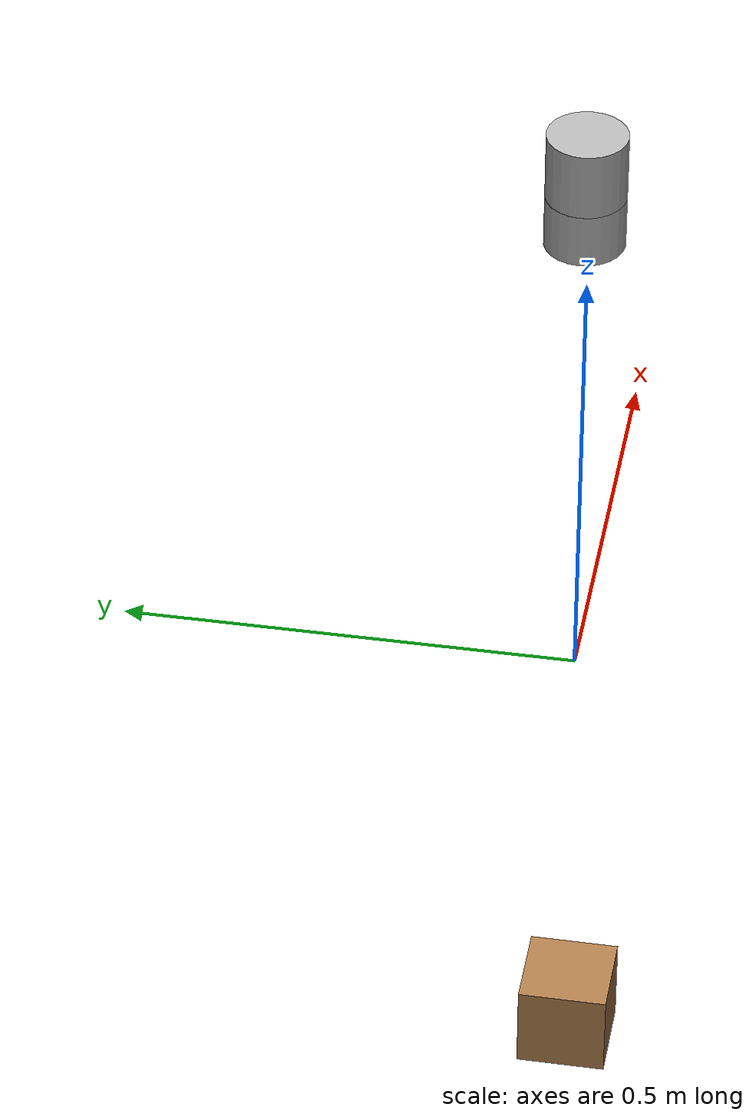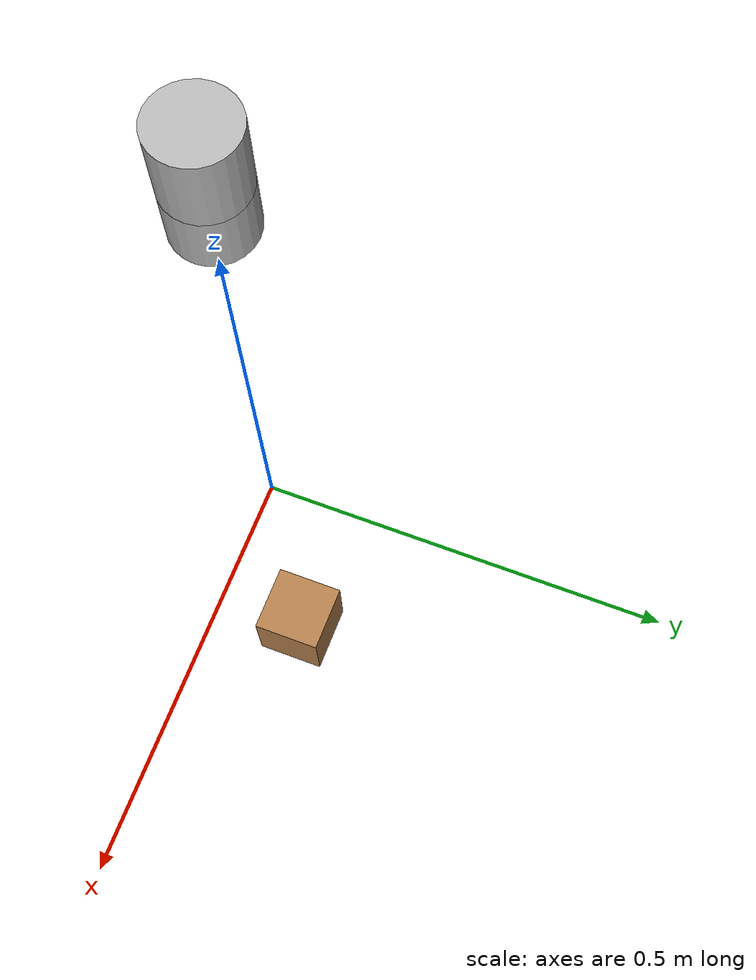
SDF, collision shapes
<?xml version='1.0'?>
<sdf version='1.7'>
  <model name='vehicle'>
    <model name='velodyne_hdl-32'>
      <link name='base'>
        <pose>0 0 0.029335 0 -0 0</pose>
        <inertial>
          <mass>1.2</mass>
          <inertia>
            <ixx>0.00108747</ixx>
            <iyy>0.00108747</iyy>
            <izz>0.00109244</izz>
            <ixy>0</ixy>
            <ixz>0</ixz>
            <iyz>0</iyz>
          </inertia>
          <pose>0 0 0 0 -0 0</pose>
        </inertial>
        <self_collide>0</self_collide>
        <enable_wind>0</enable_wind>
        <kinematic>0</kinematic>
        <visual name='base_visual'>
          <pose>0 0 -0.029335 0 -0 0</pose>
          <geometry>
            <mesh>
              <uri>model://velodyne_hdl32/meshes/velodyne_base.dae</uri>
            </mesh>
          </geometry>
          <material>
            <shader type='pixel'/>
          </material>
          <transparency>0</transparency>
          <cast_shadows>1</cast_shadows>
        </visual>
        <collision name='base_collision'>
          <laser_retro>0</laser_retro>
          <max_contacts>10</max_contacts>
          <pose>0 0 0 0 -0 0</pose>
          <geometry>
            <cylinder>
              <radius>0.04267</radius>
              <length>0.05867</length>
            </cylinder>
          </geometry>
          <surface>
            <friction>
              <ode>
                <mu>1</mu>
                <mu2>1</mu2>
                <fdir1>0 0 0</fdir1>
                <slip1>0</slip1>
                <slip2>0</slip2>
              </ode>
              <torsional>
                <coefficient>1</coefficient>
                <patch_radius>0</patch_radius>
                <surface_radius>0</surface_radius>
                <use_patch_radius>1</use_patch_radius>
                <ode>
                  <slip>0</slip>
                </ode>
              </torsional>
            </friction>
            <bounce>
              <restitution_coefficient>0</restitution_coefficient>
              <threshold>1e+06</threshold>
            </bounce>
            <contact>
              <collide_without_contact>0</collide_without_contact>
              <collide_without_contact_bitmask>1</collide_without_contact_bitmask>
              <collide_bitmask>1</collide_bitmask>
              <ode>
                <soft_cfm>0</soft_cfm>
                <soft_erp>0.2</soft_erp>
                <kp>1e+13</kp>
                <kd>1</kd>
                <max_vel>0.01</max_vel>
                <min_depth>0</min_depth>
              </ode>
              <bullet>
                <split_impulse>1</split_impulse>
                <split_impulse_penetration_threshold>-0.01</split_impulse_penetration_threshold>
                <soft_cfm>0</soft_cfm>
                <soft_erp>0.2</soft_erp>
                <kp>1e+13</kp>
                <kd>1</kd>
              </bullet>
            </contact>
          </surface>
        </collision>
      </link>
      <link name='top'>
        <pose>0 0 0.095455 0 -0 0</pose>
        <inertial>
          <mass>0.1</mass>
          <inertia>
            <ixx>9.062e-05</ixx>
            <iyy>9.062e-05</iyy>
            <izz>9.104e-05</izz>
            <ixy>0</ixy>
            <ixz>0</ixz>
            <iyz>0</iyz>
          </inertia>
          <pose>0 0 0 0 -0 0</pose>
        </inertial>
        <sensor name='sensor' type='ray'>
          <pose>0 0 -0.004645 1.5707 -0 0</pose>
          <visualize>1</visualize>
          <update_rate>30</update_rate>
          <ray>
            <scan>
              <horizontal>
                <samples>32</samples>
                <resolution>1</resolution>
                <min_angle>-0.535292</min_angle>
                <max_angle>0.186227</max_angle>
              </horizontal>
              <vertical>
                <samples>1</samples>
                <min_angle>0</min_angle>
                <max_angle>0</max_angle>
              </vertical>
            </scan>
            <range>
              <min>0.05</min>
              <max>70</max>
              <resolution>0.02</resolution>
            </range>
          </ray>
        </sensor>
        <self_collide>0</self_collide>
        <enable_wind>0</enable_wind>
        <kinematic>0</kinematic>
        <gravity>0</gravity>
        <visual name='top_visual'>
          <pose>0 0 -0.037679 0 -0 1.5707</pose>
          <geometry>
            <mesh>
              <uri>model://velodyne_hdl32/meshes/velodyne_top.dae</uri>
            </mesh>
          </geometry>
          <material>
            <shader type='pixel'>
              <normal_map>__default__</normal_map>
            </shader>
          </material>
          <pose>0 0 0 0 -0 0</pose>
          <transparency>0</transparency>
          <cast_shadows>1</cast_shadows>
        </visual>
        <collision name='top_collision'>
          <laser_retro>0</laser_retro>
          <max_contacts>10</max_contacts>
          <pose>0 0 0 0 -0 0</pose>
          <geometry>
            <cylinder>
              <radius>0.04267</radius>
              <length>0.07357</length>
            </cylinder>
          </geometry>
          <surface>
            <friction>
              <ode>
                <mu>1</mu>
                <mu2>1</mu2>
                <fdir1>0 0 0</fdir1>
                <slip1>0</slip1>
                <slip2>0</slip2>
              </ode>
              <torsional>
                <coefficient>1</coefficient>
                <patch_radius>0</patch_radius>
                <surface_radius>0</surface_radius>
                <use_patch_radius>1</use_patch_radius>
                <ode>
                  <slip>0</slip>
                </ode>
              </torsional>
            </friction>
            <bounce>
              <restitution_coefficient>0</restitution_coefficient>
              <threshold>1e+06</threshold>
            </bounce>
            <contact>
              <collide_without_contact>0</collide_without_contact>
              <collide_without_contact_bitmask>1</collide_without_contact_bitmask>
              <collide_bitmask>1</collide_bitmask>
              <ode>
                <soft_cfm>0</soft_cfm>
                <soft_erp>0.2</soft_erp>
                <kp>1e+13</kp>
                <kd>1</kd>
                <max_vel>0.01</max_vel>
                <min_depth>0</min_depth>
              </ode>
              <bullet>
                <split_impulse>1</split_impulse>
                <split_impulse_penetration_threshold>-0.01</split_impulse_penetration_threshold>
                <soft_cfm>0</soft_cfm>
                <soft_erp>0.2</soft_erp>
                <kp>1e+13</kp>
                <kd>1</kd>
              </bullet>
            </contact>
          </surface>
        </collision>
      </link>
      <joint name='joint' type='revolute'>
        <parent>base</parent>
        <child>top</child>
        <pose>0 0 -0.036785 0 -0 0</pose>
        <axis>
          <xyz>0 0 1</xyz>
          <limit>
            <lower>-1e+16</lower>
            <upper>1e+16</upper>
            <effort>-1</effort>
            <velocity>-1</velocity>
          </limit>
          <dynamics>
            <spring_reference>0</spring_reference>
            <spring_stiffness>0</spring_stiffness>
            <damping>0</damping>
            <friction>0</friction>
          </dynamics>
        </axis>
        <physics>
          <ode>
            <limit>
              <cfm>0</cfm>
              <erp>0.2</erp>
            </limit>
            <suspension>
              <cfm>0</cfm>
              <erp>0.2</erp>
            </suspension>
          </ode>
        </physics>
      </joint>
      <static>0</static>
      <allow_auto_disable>1</allow_auto_disable>
      <plugin name='velodyne_plugin' filename='libvelodyne_plugin.so'>
        <velocity>5</velocity>
      </plugin>
      <pose>-0.000695 0.00376 0.554517 0 -0 0</pose>
    </model>
    <model name='wood_cube_10cm'>
      <link name='link'>
        <pose>0 0 0.05 0 -0 0</pose>
        <inertial>
          <mass>0.5167</mass>
          <inertia>
            <ixx>0.000861167</ixx>
            <ixy>0</ixy>
            <ixz>0</ixz>
            <iyy>0.000861167</iyy>
            <iyz>0</iyz>
            <izz>0.000861167</izz>
          </inertia>
        </inertial>
        <collision name='collision'>
          <geometry>
            <box>
              <size>0.1 0.1 0.1</size>
            </box>
          </geometry>
          <surface>
            <contact>
              <poissons_ratio>0.347</poissons_ratio>
              <elastic_modulus>8.8e+09</elastic_modulus>
              <ode>
                <kp>100000</kp>
                <kd>100</kd>
                <max_vel>100</max_vel>
                <min_depth>0.001</min_depth>
              </ode>
            </contact>
            <friction>
              <torsional>
                <coefficient>1</coefficient>
                <use_patch_radius>0</use_patch_radius>
                <surface_radius>0.01</surface_radius>
              </torsional>
            </friction>
          </surface>
        </collision>
        <visual name='visual'>
          <geometry>
            <box>
              <size>0.1 0.1 0.1</size>
            </box>
          </geometry>
          <material>
            <script>
              <uri>file://media/materials/scripts/gazebo.material</uri>
              <name>Gazebo/Wood</name>
            </script>
          </material>
        </visual>
      </link>
      <pose>0.000695 -0.00376 -0.554515 0 -0 0</pose>
    </model>
    <joint name='link_JOINT_0' type='fixed'>
      <parent>wood_cube_10cm::link</parent>
      <child>velodyne_hdl-32::base</child>
      <pose>0 0 0 0 -0 0</pose>
      <physics>
        <ode>
          <limit>
            <cfm>0</cfm>
            <erp>0.2</erp>
          </limit>
          <suspension>
            <cfm>0</cfm>
            <erp>0.2</erp>
          </suspension>
        </ode>
      </physics>
    </joint>
    <static>0</static>
    <allow_auto_disable>1</allow_auto_disable>
  </model>
</sdf>
